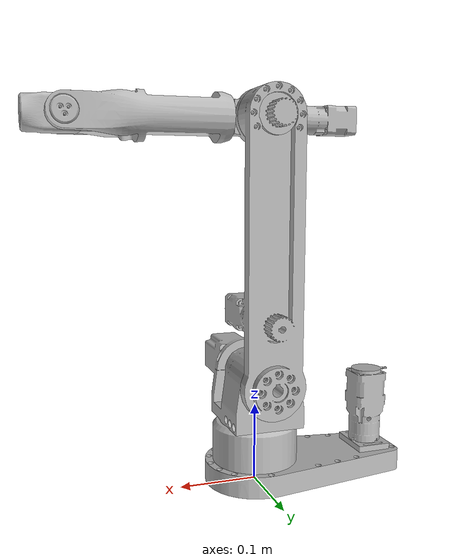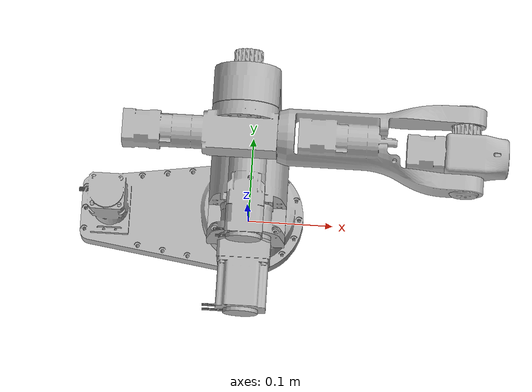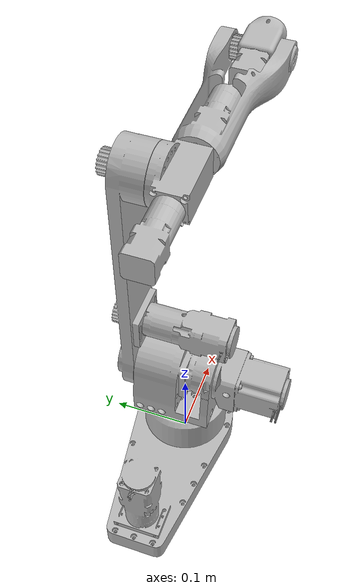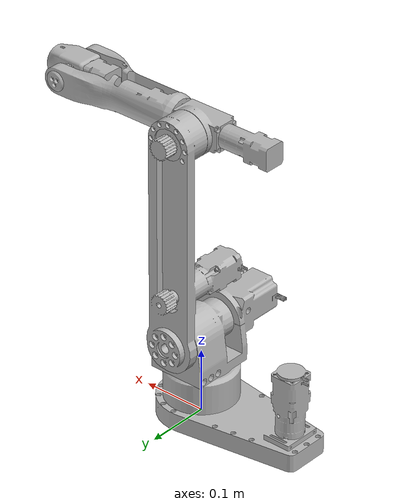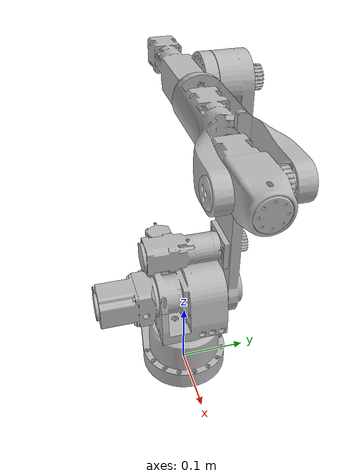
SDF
<sdf version='1.7'>
  <model name='RoboticArmv2'>
    <link name='base_link'>
      <inertial>
        <pose>-0.038799 0 0.039037 0 -0 0</pose>
        <mass>4.037</mass>
        <inertia>
          <ixx>0.0047485</ixx>
          <ixy>6.9936e-08</ixy>
          <ixz>2.5452e-06</ixz>
          <iyy>0.01214</iyy>
          <iyz>-4.4737e-10</iyz>
          <izz>0.015979</izz>
        </inertia>
      </inertial>
      <collision name='base_link_collision'>
        <pose>0 0 0 0 -0 0</pose>
        <geometry>
          <mesh>
            <scale>1 1 1</scale>
            <uri>model://arm_control/description/meshes/base_link.STL</uri>
          </mesh>
        </geometry>
      </collision>
      <visual name='base_link_visual'>
        <pose>0 0 0 0 -0 0</pose>
        <geometry>
          <mesh>
            <scale>1 1 1</scale>
            <uri>model://arm_control/description/meshes/base_link.STL</uri>
          </mesh>
        </geometry>
      </visual>
    </link>
    <joint name='J1' type='revolute'>
      <pose relative_to='base_link'>0 0 0.005996 1.5708 -0 0</pose>
      <parent>base_link</parent>
      <child>Link1</child>
      <axis>
        <xyz>0 -1 0</xyz>
        <limit>
          <lower>-3.14</lower>
          <upper>3.14</upper>
          <effort>10</effort>
          <velocity>10</velocity>
        </limit>
        <dynamics>
          <spring_reference>0</spring_reference>
          <spring_stiffness>0</spring_stiffness>
        </dynamics>
      </axis>
    </joint>
    <link name='Link1'>
      <pose relative_to='J1'>0 0 0 0 -0 0</pose>
      <inertial>
        <pose>4.7e-05 0.10068 0.020948 0 -0 0</pose>
        <mass>0.97007</mass>
        <inertia>
          <ixx>0.0010278</ixx>
          <ixy>-3.2684e-07</ixy>
          <ixz>-5.2705e-07</ixz>
          <iyy>0.001187</iyy>
          <iyz>2.9768e-06</iyz>
          <izz>0.00070562</izz>
        </inertia>
      </inertial>
      <collision name='Link1_collision'>
        <pose>0 0 0 0 -0 0</pose>
        <geometry>
          <mesh>
            <scale>1 1 1</scale>
            <uri>model://arm_control/description/meshes/Link1.STL</uri>
          </mesh>
        </geometry>
      </collision>
      <visual name='Link1_visual'>
        <pose>0 0 0 0 -0 0</pose>
        <geometry>
          <mesh>
            <scale>1 1 1</scale>
            <uri>model://arm_control/description/meshes/Link1.STL</uri>
          </mesh>
        </geometry>
      </visual>
    </link>
    <joint name='J2' type='revolute'>
      <pose relative_to='Link1'>0 0.134 0 0 -0 0</pose>
      <parent>Link1</parent>
      <child>Link2</child>
      <axis>
        <xyz>0 0 -1</xyz>
        <limit>
          <lower>-1.57</lower>
          <upper>1.57</upper>
          <effort>0</effort>
          <velocity>0</velocity>
        </limit>
        <dynamics>
          <spring_reference>0</spring_reference>
          <spring_stiffness>0</spring_stiffness>
        </dynamics>
      </axis>
    </joint>
    <link name='Link2'>
      <pose relative_to='J2'>0 0 0 0 -0 0</pose>
      <inertial>
        <pose>-1e-06 0.117729 -0.037867 0 -0 0</pose>
        <mass>0.577416</mass>
        <inertia>
          <ixx>0.00360474</ixx>
          <ixy>6.4776e-08</ixy>
          <ixz>1.20114e-07</ixz>
          <iyy>0.000412137</iyy>
          <iyz>-1.52201e-05</iyz>
          <izz>0.00360983</izz>
        </inertia>
      </inertial>
      <collision name='Link2_collision'>
        <pose>0 0 0 0 -0 0</pose>
        <geometry>
          <mesh>
            <scale>1 1 1</scale>
            <uri>model://arm_control/description/meshes/Link2.STL</uri>
          </mesh>
        </geometry>
      </collision>
      <visual name='Link2_visual'>
        <pose>0 0 0 0 -0 0</pose>
        <geometry>
          <mesh>
            <scale>1 1 1</scale>
            <uri>model://arm_control/description/meshes/Link2.STL</uri>
          </mesh>
        </geometry>
      </visual>
    </link>
    <joint name='J3' type='revolute'>
      <pose relative_to='Link2'>0 0.322 0 0 -0 0</pose>
      <parent>Link2</parent>
      <child>Link3</child>
      <axis>
        <xyz>0 0 -1</xyz>
        <limit>
          <lower>0</lower>
          <upper>3.14</upper>
          <effort>10</effort>
          <velocity>10</velocity>
        </limit>
        <dynamics>
          <spring_reference>0</spring_reference>
          <spring_stiffness>0</spring_stiffness>
        </dynamics>
      </axis>
    </joint>
    <link name='Link3'>
      <pose relative_to='J3'>0 0 0 0 -0 0</pose>
      <inertial>
        <pose>-0.032888 1e-06 -0.012996 0 -0 0</pose>
        <mass>0.251664</mass>
        <inertia>
          <ixx>6.72067e-05</ixx>
          <ixy>4.83904e-09</ixy>
          <ixz>-2.18785e-08</ixz>
          <iyy>0.000125286</iyy>
          <iyz>3.49876e-15</iyz>
          <izz>0.000132327</izz>
        </inertia>
      </inertial>
      <collision name='Link3_collision'>
        <pose>0 0 0 0 -0 0</pose>
        <geometry>
          <mesh>
            <scale>1 1 1</scale>
            <uri>model://arm_control/description/meshes/Link3.STL</uri>
          </mesh>
        </geometry>
      </collision>
      <visual name='Link3_visual'>
        <pose>0 0 0 0 -0 0</pose>
        <geometry>
          <mesh>
            <scale>1 1 1</scale>
            <uri>model://arm_control/description/meshes/Link3.STL</uri>
          </mesh>
        </geometry>
      </visual>
    </link>
    <joint name='J4' type='revolute'>
      <pose relative_to='Link3'>0.03 0 0 0 -0 0</pose>
      <parent>Link3</parent>
      <child>Link4</child>
      <axis>
        <xyz>1 0 0</xyz>
        <limit>
          <lower>-3.14</lower>
          <upper>3.14</upper>
          <effort>10</effort>
          <velocity>10</velocity>
        </limit>
        <dynamics>
          <spring_reference>0</spring_reference>
          <spring_stiffness>0</spring_stiffness>
        </dynamics>
      </axis>
    </joint>
    <link name='Link4'>
      <pose relative_to='J4'>0 0 0 0 -0 0</pose>
      <inertial>
        <pose>0.099774 -0.000172 0.001186 0 -0 0</pose>
        <mass>0.356014</mass>
        <inertia>
          <ixx>0.000270167</ixx>
          <ixy>-2.80248e-07</ixy>
          <ixz>-2.10227e-05</ixz>
          <iyy>0.00116383</iyy>
          <iyz>-8.06758e-08</iyz>
          <izz>0.000994142</izz>
        </inertia>
      </inertial>
      <collision name='Link4_collision'>
        <pose>0 0 0 0 -0 0</pose>
        <geometry>
          <mesh>
            <scale>1 1 1</scale>
            <uri>model://arm_control/description/meshes/Link4.STL</uri>
          </mesh>
        </geometry>
      </collision>
      <visual name='Link4_visual'>
        <pose>0 0 0 0 -0 0</pose>
        <geometry>
          <mesh>
            <scale>1 1 1</scale>
            <uri>model://arm_control/description/meshes/Link4.STL</uri>
          </mesh>
        </geometry>
      </visual>
    </link>
    <joint name='J5' type='revolute'>
      <pose relative_to='Link4'>0.20275 0 0 -3.14159 0 0</pose>
      <parent>Link4</parent>
      <child>Link5</child>
      <axis>
        <xyz>0 0 -1</xyz>
        <limit>
          <lower>-1.57</lower>
          <upper>1.57</upper>
          <effort>10</effort>
          <velocity>10</velocity>
        </limit>
        <dynamics>
          <spring_reference>0</spring_reference>
          <spring_stiffness>0</spring_stiffness>
        </dynamics>
      </axis>
    </joint>
    <link name='Link5'>
      <pose relative_to='J5'>0 0 0 0 -0 0</pose>
      <inertial>
        <pose>-0.007459 1.4e-05 -0.008339 0 -0 0</pose>
        <mass>0.175483</mass>
        <inertia>
          <ixx>5.10546e-05</ixx>
          <ixy>-5.97452e-08</ixy>
          <ixz>1.44581e-06</ixz>
          <iyy>0.000107504</iyy>
          <iyz>5.76445e-09</iyz>
          <izz>0.000100856</izz>
        </inertia>
      </inertial>
      <collision name='Link5_collision'>
        <pose>0 0 0 0 -0 0</pose>
        <geometry>
          <mesh>
            <scale>1 1 1</scale>
            <uri>model://arm_control/description/meshes/Link5.STL</uri>
          </mesh>
        </geometry>
      </collision>
      <visual name='Link5_visual'>
        <pose>0 0 0 0 -0 0</pose>
        <geometry>
          <mesh>
            <scale>1 1 1</scale>
            <uri>model://arm_control/description/meshes/Link5.STL</uri>
          </mesh>
        </geometry>
      </visual>
    </link>
    <joint name='J6' type='revolute'>
      <pose relative_to='Link5'>0.02825 0 -0.01 3.14159 -0 0</pose>
      <parent>Link5</parent>
      <child>Link6</child>
      <axis>
        <xyz>1 0 0</xyz>
        <limit>
          <lower>-3.14</lower>
          <upper>3.14</upper>
          <effort>10</effort>
          <velocity>10</velocity>
        </limit>
        <dynamics>
          <spring_reference>0</spring_reference>
          <spring_stiffness>0</spring_stiffness>
        </dynamics>
      </axis>
    </joint>
    <link name='Link6'>
      <pose relative_to='J6'>0 0 0 0 -0 0</pose>
      <inertial>
        <pose>0.00834 0.000114 -0 0 -0 0</pose>
        <mass>0.0135264</mass>
        <inertia>
          <ixx>2.02217e-06</ixx>
          <ixy>5.8748e-09</ixy>
          <ixz>-8.97699e-15</ixz>
          <iyy>1.32045e-06</iyy>
          <iyz>-1.52963e-14</iyz>
          <izz>1.30366e-06</izz>
        </inertia>
      </inertial>
      <collision name='Link6_collision'>
        <pose>0 0 0 0 -0 0</pose>
        <geometry>
          <mesh>
            <scale>1 1 1</scale>
            <uri>model://arm_control/description/meshes/Link6.STL</uri>
          </mesh>
        </geometry>
      </collision>
      <visual name='Link6_visual'>
        <pose>0 0 0 0 -0 0</pose>
        <geometry>
          <mesh>
            <scale>1 1 1</scale>
            <uri>model://arm_control/description/meshes/Link6.STL</uri>
          </mesh>
        </geometry>
      </visual>
    </link>
    <static>0</static>
    <plugin name='gazebo_ros2_control' filename='libgazebo_ros2_control.so'>
      <parameters>/home/joas329/Desktop/yurs/arm_control/install/arm_control/share/arm_control/config/arm_controllers.yaml</parameters>
    </plugin>
  </model>
</sdf>
